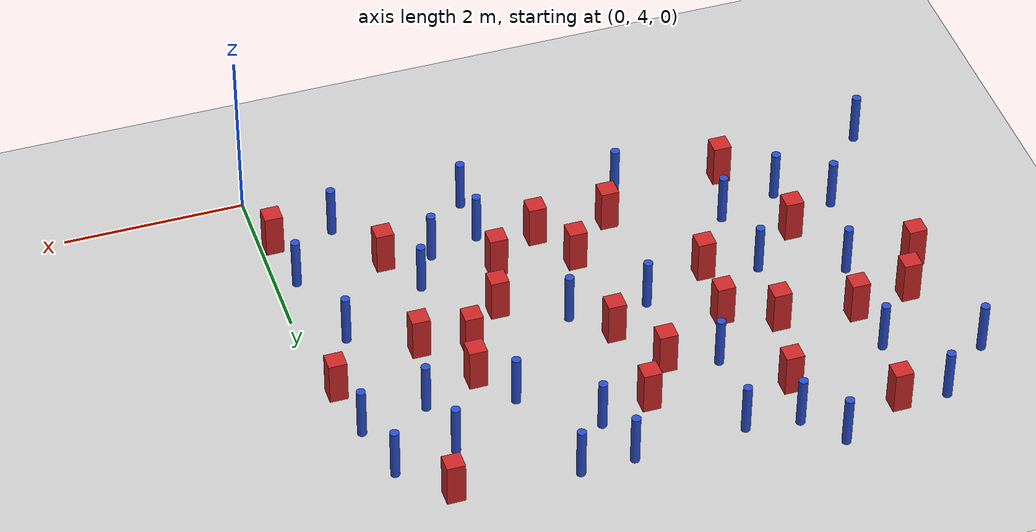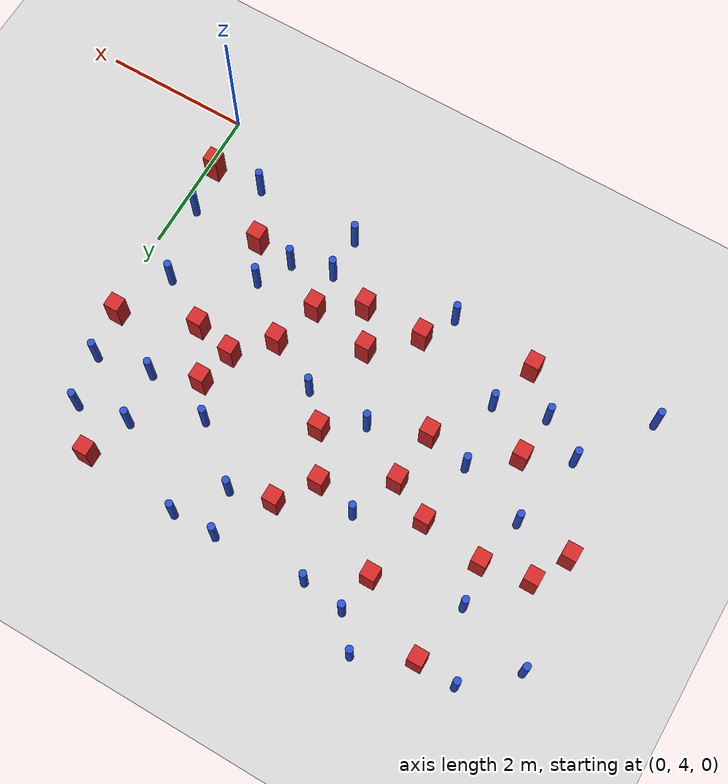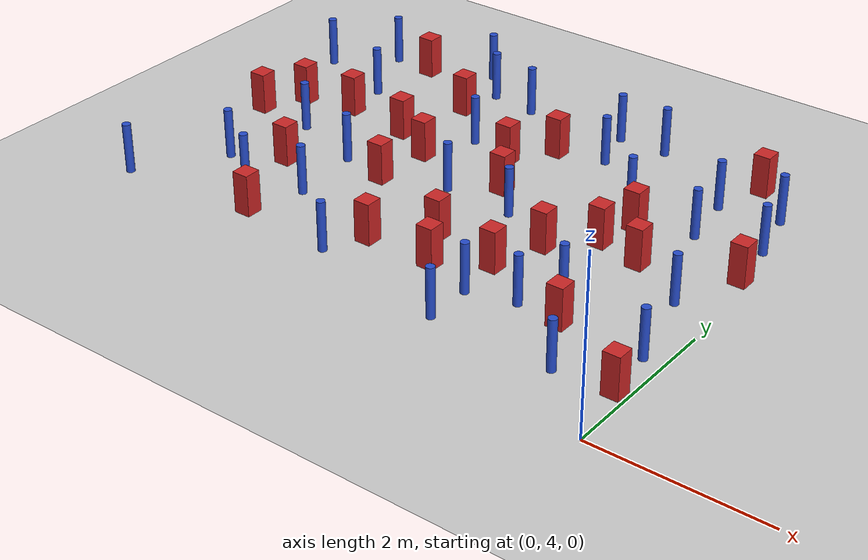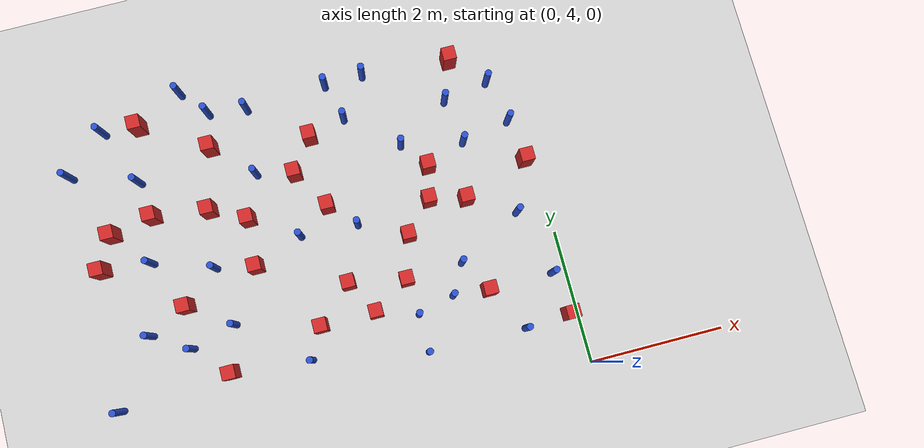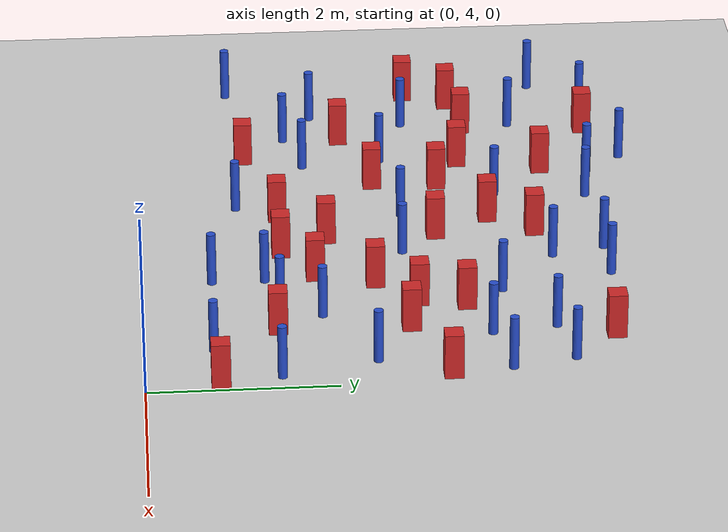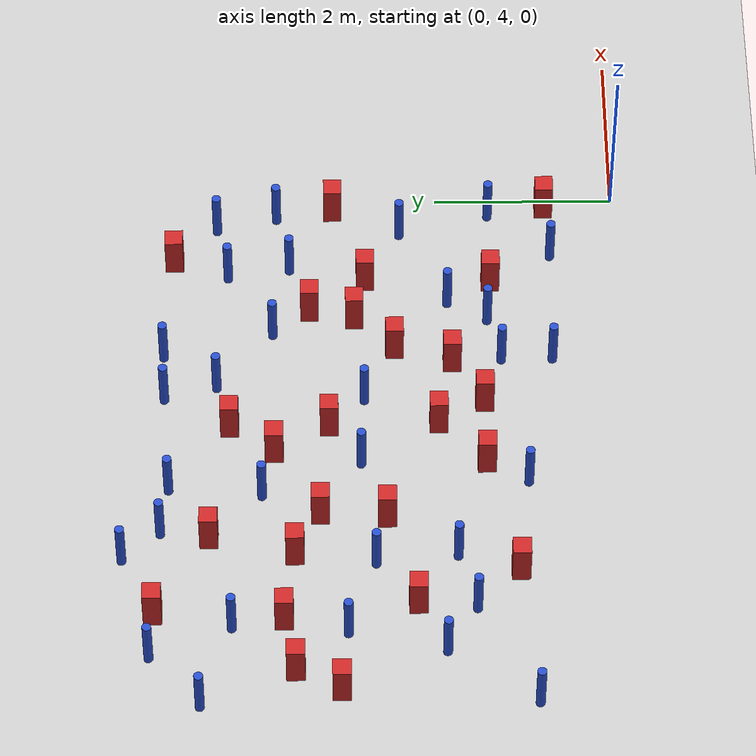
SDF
<sdf version="1.6">
 <world name="default">
  <model name="ground_plane">
   <static>1</static>
   <link name="link">
    <collision name="collision">
     <geometry><plane><normal>0 0 1</normal><size>100 100</size></plane></geometry>
     <surface><friction><ode><mu>100</mu><mu2>50</mu2></ode></friction></surface>
    </collision>
    <visual name="visual">
     <cast_shadows>0</cast_shadows>
     <geometry><plane><normal>0 0 1</normal><size>100 100</size></plane></geometry>
     <material>
      <ambient>1.0 1.0 1.0 1.0</ambient>
      <diffuse>0.8 0.8 0.8 1.0</diffuse>
      <specular>0.01 0.01 0.01 1.000000</specular>
     </material>
    </visual>
   </link>
  </model>
  <model name="square_post_obstacle0">
   <static>true</static>
   <pose>-4.44707930667 6.60124097648 -4.36207812815e-07 3.75137919937e-06 9.77721102514e-07 2.47381364184e-05</pose>
   <link name="link">
    <pose>0 0 0.25 0 -0 0</pose>
    <inertial>
     <mass>100</mass>
     <inertia>
      <ixx>0.166667</ixx>
      <ixy>0</ixy>
      <ixz>0</ixz>
      <iyy>0.166667</iyy>
      <iyz>0</iyz>
      <izz>0.166667</izz>
     </inertia>
    </inertial>
    <collision name="collision"><geometry><box><size>.2 .2 .5</size></box></geometry></collision>
    <visual name="visual">
     <geometry><box><size>.2 .2 .5</size></box></geometry>
     <material>
      <script><name>Gazebo/Red</name><uri>file://media/materials/scripts/gazebo.material</uri></script>
     </material>
    </visual>
   </link>
  </model>
  <model name="pole_obstacle4">
   <static>true</static>
   <pose>-2.6535177861 8.46014323631 -3.09024884848e-07 -7.19054271902e-07 -2.11315075199e-07 -1.93935509286e-07</pose>
   <link name="link">
    <pose>0 0 0.3 0 -0 0</pose>
    <inertial>
     <mass>1</mass>
     <inertia><ixx>0.145833</ixx><ixy>0</ixy><ixz>0</ixz><iyy>0.145833</iyy><iyz>0</iyz><izz>0.125</izz></inertia>
    </inertial>
    <collision name="collision">
     <geometry><cylinder><radius>0.05</radius><length>.6</length></cylinder></geometry>
    </collision>
    <visual name="visual">
     <geometry><cylinder><radius>0.05</radius><length>.6</length></cylinder></geometry>
     <material>
      <script><name>Gazebo/Blue</name><uri>file://media/materials/scripts/gazebo.material</uri></script>
     </material>
    </visual>
   </link>
  </model>
  <model name="pole_obstacle12">
   <static>true</static>
   <pose>-5.93365733735 7.03019296914 -3.09024884793e-07 -7.19054271911e-07 -2.1131507516e-07 -1.93935509277e-07</pose>
   <link name="link">
    <pose>0 0 0.3 0 -0 0</pose>
    <inertial>
     <mass>1</mass>
     <inertia><ixx>0.145833</ixx><ixy>0</ixy><ixz>0</ixz><iyy>0.145833</iyy><iyz>0</iyz><izz>0.125</izz></inertia>
    </inertial>
    <collision name="collision">
     <geometry><cylinder><radius>0.05</radius><length>.6</length></cylinder></geometry>
    </collision>
    <visual name="visual">
     <geometry><cylinder><radius>0.05</radius><length>.6</length></cylinder></geometry>
     <material>
      <script><name>Gazebo/Blue</name><uri>file://media/materials/scripts/gazebo.material</uri></script>
     </material>
    </visual>
   </link>
  </model>
  <model name="square_post_obstacle22">
   <static>true</static>
   <pose>-2.14941318314 6.49315178788 -4.36207812815e-07 3.75137919937e-06 9.77721102514e-07 2.47381364184e-05</pose>
   <link name="link">
    <pose>0 0 0.25 0 -0 0</pose>
    <inertial>
     <mass>100</mass>
     <inertia>
      <ixx>0.166667</ixx>
      <ixy>0</ixy>
      <ixz>0</ixz>
      <iyy>0.166667</iyy>
      <iyz>0</iyz>
      <izz>0.166667</izz>
     </inertia>
    </inertial>
    <collision name="collision"><geometry><box><size>.2 .2 .5</size></box></geometry></collision>
    <visual name="visual">
     <geometry><box><size>.2 .2 .5</size></box></geometry>
     <material>
      <script><name>Gazebo/Red</name><uri>file://media/materials/scripts/gazebo.material</uri></script>
     </material>
    </visual>
   </link>
  </model>
  <model name="pole_obstacle19">
   <static>true</static>
   <pose>-2.80860477781 9.03629585932 -3.09024884848e-07 -7.19054271902e-07 -2.11315075199e-07 -1.93935509286e-07</pose>
   <link name="link">
    <pose>0 0 0.3 0 -0 0</pose>
    <inertial>
     <mass>1</mass>
     <inertia><ixx>0.145833</ixx><ixy>0</ixy><ixz>0</ixz><iyy>0.145833</iyy><iyz>0</iyz><izz>0.125</izz></inertia>
    </inertial>
    <collision name="collision">
     <geometry><cylinder><radius>0.05</radius><length>.6</length></cylinder></geometry>
    </collision>
    <visual name="visual">
     <geometry><cylinder><radius>0.05</radius><length>.6</length></cylinder></geometry>
     <material>
      <script><name>Gazebo/Blue</name><uri>file://media/materials/scripts/gazebo.material</uri></script>
     </material>
    </visual>
   </link>
  </model>
  <model name="square_post_obstacle29">
   <static>true</static>
   <pose>-4.93352778834 7.59655148144 -4.36207812815e-07 3.75137919937e-06 9.77721102514e-07 2.47381364184e-05</pose>
   <link name="link">
    <pose>0 0 0.25 0 -0 0</pose>
    <inertial>
     <mass>100</mass>
     <inertia>
      <ixx>0.166667</ixx>
      <ixy>0</ixy>
      <ixz>0</ixz>
      <iyy>0.166667</iyy>
      <iyz>0</iyz>
      <izz>0.166667</izz>
     </inertia>
    </inertial>
    <collision name="collision"><geometry><box><size>.2 .2 .5</size></box></geometry></collision>
    <visual name="visual">
     <geometry><box><size>.2 .2 .5</size></box></geometry>
     <material>
      <script><name>Gazebo/Red</name><uri>file://media/materials/scripts/gazebo.material</uri></script>
     </material>
    </visual>
   </link>
  </model>
  <model name="pole_obstacle20">
   <static>true</static>
   <pose>-1.10309107053 8.34648023135 -3.09024884793e-07 -7.19054271912e-07 -2.1131507515e-07 -1.93935509273e-07</pose>
   <link name="link">
    <pose>0 0 0.3 0 -0 0</pose>
    <inertial>
     <mass>1</mass>
     <inertia><ixx>0.145833</ixx><ixy>0</ixy><ixz>0</ixz><iyy>0.145833</iyy><iyz>0</iyz><izz>0.125</izz></inertia>
    </inertial>
    <collision name="collision">
     <geometry><cylinder><radius>0.05</radius><length>.6</length></cylinder></geometry>
    </collision>
    <visual name="visual">
     <geometry><cylinder><radius>0.05</radius><length>.6</length></cylinder></geometry>
     <material>
      <script><name>Gazebo/Blue</name><uri>file://media/materials/scripts/gazebo.material</uri></script>
     </material>
    </visual>
   </link>
  </model>
  <model name="pole_obstacle24">
   <static>true</static>
   <pose>-1.73352743419 5.45327862843 -3.09024884793e-07 -7.19054271912e-07 -2.11315075134e-07 -1.93935509265e-07</pose>
   <link name="link">
    <pose>0 0 0.3 0 -0 0</pose>
    <inertial>
     <mass>1</mass>
     <inertia><ixx>0.145833</ixx><ixy>0</ixy><ixz>0</ixz><iyy>0.145833</iyy><iyz>0</iyz><izz>0.125</izz></inertia>
    </inertial>
    <collision name="collision">
     <geometry><cylinder><radius>0.05</radius><length>.6</length></cylinder></geometry>
    </collision>
    <visual name="visual">
     <geometry><cylinder><radius>0.05</radius><length>.6</length></cylinder></geometry>
     <material>
      <script><name>Gazebo/Blue</name><uri>file://media/materials/scripts/gazebo.material</uri></script>
     </material>
    </visual>
   </link>
  </model>
  <model name="pole_obstacle31">
   <static>true</static>
   <pose>-0.994695112782 7.65867741135 -3.09024884793e-07 -7.19054271912e-07 -2.11315075128e-07 -1.93935509261e-07</pose>
   <link name="link">
    <pose>0 0 0.3 0 -0 0</pose>
    <inertial>
     <mass>1</mass>
     <inertia><ixx>0.145833</ixx><ixy>0</ixy><ixz>0</ixz><iyy>0.145833</iyy><iyz>0</iyz><izz>0.125</izz></inertia>
    </inertial>
    <collision name="collision">
     <geometry><cylinder><radius>0.05</radius><length>.6</length></cylinder></geometry>
    </collision>
    <visual name="visual">
     <geometry><cylinder><radius>0.05</radius><length>.6</length></cylinder></geometry>
     <material>
      <script><name>Gazebo/Blue</name><uri>file://media/materials/scripts/gazebo.material</uri></script>
     </material>
    </visual>
   </link>
  </model>
  <model name="square_post_obstacle36">
   <static>true</static>
   <pose>-1.17865415847 6.81177369545 -4.36207812815e-07 3.75137919937e-06 9.77721102514e-07 2.47381364184e-05</pose>
   <link name="link">
    <pose>0 0 0.25 0 -0 0</pose>
    <inertial>
     <mass>100</mass>
     <inertia>
      <ixx>0.166667</ixx>
      <ixy>0</ixy>
      <ixz>0</ixz>
      <iyy>0.166667</iyy>
      <iyz>0</iyz>
      <izz>0.166667</izz>
     </inertia>
    </inertial>
    <collision name="collision"><geometry><box><size>.2 .2 .5</size></box></geometry></collision>
    <visual name="visual">
     <geometry><box><size>.2 .2 .5</size></box></geometry>
     <material>
      <script><name>Gazebo/Red</name><uri>file://media/materials/scripts/gazebo.material</uri></script>
     </material>
    </visual>
   </link>
  </model>
  <model name="pole_obstacle38">
   <static>true</static>
   <pose>-3.97011310584 5.05452933793 -3.09024884793e-07 -7.19054271912e-07 -2.11315075139e-07 -1.93935509268e-07</pose>
   <link name="link">
    <pose>0 0 0.3 0 -0 0</pose>
    <inertial>
     <mass>1</mass>
     <inertia><ixx>0.145833</ixx><ixy>0</ixy><ixz>0</ixz><iyy>0.145833</iyy><iyz>0</iyz><izz>0.125</izz></inertia>
    </inertial>
    <collision name="collision">
     <geometry><cylinder><radius>0.05</radius><length>.6</length></cylinder></geometry>
    </collision>
    <visual name="visual">
     <geometry><cylinder><radius>0.05</radius><length>.6</length></cylinder></geometry>
     <material>
      <script><name>Gazebo/Blue</name><uri>file://media/materials/scripts/gazebo.material</uri></script>
     </material>
    </visual>
   </link>
  </model>
  <model name="pole_obstacle41">
   <static>true</static>
   <pose>-6.22653493084 9.1432001256 -3.09024884793e-07 -7.19054271912e-07 -2.1131507513e-07 -1.93935509261e-07</pose>
   <link name="link">
    <pose>0 0 0.3 0 -0 0</pose>
    <inertial>
     <mass>1</mass>
     <inertia><ixx>0.145833</ixx><ixy>0</ixy><ixz>0</ixz><iyy>0.145833</iyy><iyz>0</iyz><izz>0.125</izz></inertia>
    </inertial>
    <collision name="collision">
     <geometry><cylinder><radius>0.05</radius><length>.6</length></cylinder></geometry>
    </collision>
    <visual name="visual">
     <geometry><cylinder><radius>0.05</radius><length>.6</length></cylinder></geometry>
     <material>
      <script><name>Gazebo/Blue</name><uri>file://media/materials/scripts/gazebo.material</uri></script>
     </material>
    </visual>
   </link>
  </model>
  <model name="pole_obstacle42">
   <static>true</static>
   <pose>-1.91700134194 7.84439493254 -3.09024884793e-07 -7.19054271912e-07 -2.11315075134e-07 -1.93935509265e-07</pose>
   <link name="link">
    <pose>0 0 0.3 0 -0 0</pose>
    <inertial>
     <mass>1</mass>
     <inertia><ixx>0.145833</ixx><ixy>0</ixy><ixz>0</ixz><iyy>0.145833</iyy><iyz>0</iyz><izz>0.125</izz></inertia>
    </inertial>
    <collision name="collision">
     <geometry><cylinder><radius>0.05</radius><length>.6</length></cylinder></geometry>
    </collision>
    <visual name="visual">
     <geometry><cylinder><radius>0.05</radius><length>.6</length></cylinder></geometry>
     <material>
      <script><name>Gazebo/Blue</name><uri>file://media/materials/scripts/gazebo.material</uri></script>
     </material>
    </visual>
   </link>
  </model>
  <model name="pole_obstacle47">
   <static>true</static>
   <pose>-2.28388893971 4.74195943339 -3.09024884793e-07 -7.19054271912e-07 -2.11315075134e-07 -1.93935509266e-07</pose>
   <link name="link">
    <pose>0 0 0.3 0 -0 0</pose>
    <inertial>
     <mass>1</mass>
     <inertia><ixx>0.145833</ixx><ixy>0</ixy><ixz>0</ixz><iyy>0.145833</iyy><iyz>0</iyz><izz>0.125</izz></inertia>
    </inertial>
    <collision name="collision">
     <geometry><cylinder><radius>0.05</radius><length>.6</length></cylinder></geometry>
    </collision>
    <visual name="visual">
     <geometry><cylinder><radius>0.05</radius><length>.6</length></cylinder></geometry>
     <material>
      <script><name>Gazebo/Blue</name><uri>file://media/materials/scripts/gazebo.material</uri></script>
     </material>
    </visual>
   </link>
  </model>
  <model name="pole_obstacle51">
   <static>true</static>
   <pose>-4.94535502429 5.84343271887 -3.09024884793e-07 -7.19054271911e-07 -2.1131507516e-07 -1.93935509277e-07</pose>
   <link name="link">
    <pose>0 0 0.3 0 -0 0</pose>
    <inertial>
     <mass>1</mass>
     <inertia><ixx>0.145833</ixx><ixy>0</ixy><ixz>0</ixz><iyy>0.145833</iyy><iyz>0</iyz><izz>0.125</izz></inertia>
    </inertial>
    <collision name="collision">
     <geometry><cylinder><radius>0.05</radius><length>.6</length></cylinder></geometry>
    </collision>
    <visual name="visual">
     <geometry><cylinder><radius>0.05</radius><length>.6</length></cylinder></geometry>
     <material>
      <script><name>Gazebo/Blue</name><uri>file://media/materials/scripts/gazebo.material</uri></script>
     </material>
    </visual>
   </link>
  </model>
  <model name="pole_obstacle73">
   <static>true</static>
   <pose>-0.493579842853 6.41950376337 -3.09024884793e-07 -7.19054271912e-07 -2.11315075131e-07 -1.93935509262e-07</pose>
   <link name="link">
    <pose>0 0 0.3 0 -0 0</pose>
    <inertial>
     <mass>1</mass>
     <inertia><ixx>0.145833</ixx><ixy>0</ixy><ixz>0</ixz><iyy>0.145833</iyy><iyz>0</iyz><izz>0.125</izz></inertia>
    </inertial>
    <collision name="collision">
     <geometry><cylinder><radius>0.05</radius><length>.6</length></cylinder></geometry>
    </collision>
    <visual name="visual">
     <geometry><cylinder><radius>0.05</radius><length>.6</length></cylinder></geometry>
     <material>
      <script><name>Gazebo/Blue</name><uri>file://media/materials/scripts/gazebo.material</uri></script>
     </material>
    </visual>
   </link>
  </model>
  <model name="pole_obstacle76">
   <static>true</static>
   <pose>-5.85650217175 8.26815401584 -3.09024884793e-07 -7.19054271912e-07 -2.1131507513e-07 -1.93935509261e-07</pose>
   <link name="link">
    <pose>0 0 0.3 0 -0 0</pose>
    <inertial>
     <mass>1</mass>
     <inertia><ixx>0.145833</ixx><ixy>0</ixy><ixz>0</ixz><iyy>0.145833</iyy><iyz>0</iyz><izz>0.125</izz></inertia>
    </inertial>
    <collision name="collision">
     <geometry><cylinder><radius>0.05</radius><length>.6</length></cylinder></geometry>
    </collision>
    <visual name="visual">
     <geometry><cylinder><radius>0.05</radius><length>.6</length></cylinder></geometry>
     <material>
      <script><name>Gazebo/Blue</name><uri>file://media/materials/scripts/gazebo.material</uri></script>
     </material>
    </visual>
   </link>
  </model>
  <model name="pole_obstacle79">
   <static>true</static>
   <pose>-2.21996680137 9.05166987795 -3.09024884848e-07 -7.19054271902e-07 -2.11315075199e-07 -1.93935509286e-07</pose>
   <link name="link">
    <pose>0 0 0.3 0 -0 0</pose>
    <inertial>
     <mass>1</mass>
     <inertia><ixx>0.145833</ixx><ixy>0</ixy><ixz>0</ixz><iyy>0.145833</iyy><iyz>0</iyz><izz>0.125</izz></inertia>
    </inertial>
    <collision name="collision">
     <geometry><cylinder><radius>0.05</radius><length>.6</length></cylinder></geometry>
    </collision>
    <visual name="visual">
     <geometry><cylinder><radius>0.05</radius><length>.6</length></cylinder></geometry>
     <material>
      <script><name>Gazebo/Blue</name><uri>file://media/materials/scripts/gazebo.material</uri></script>
     </material>
    </visual>
   </link>
  </model>
  <model name="pole_obstacle80">
   <static>true</static>
   <pose>-4.13081466835 7.95430052767 -3.09024884793e-07 -7.19054271912e-07 -2.11315075134e-07 -1.93935509264e-07</pose>
   <link name="link">
    <pose>0 0 0.3 0 -0 0</pose>
    <inertial>
     <mass>1</mass>
     <inertia><ixx>0.145833</ixx><ixy>0</ixy><ixz>0</ixz><iyy>0.145833</iyy><iyz>0</iyz><izz>0.125</izz></inertia>
    </inertial>
    <collision name="collision">
     <geometry><cylinder><radius>0.05</radius><length>.6</length></cylinder></geometry>
    </collision>
    <visual name="visual">
     <geometry><cylinder><radius>0.05</radius><length>.6</length></cylinder></geometry>
     <material>
      <script><name>Gazebo/Blue</name><uri>file://media/materials/scripts/gazebo.material</uri></script>
     </material>
    </visual>
   </link>
  </model>
  <model name="pole_obstacle86">
   <static>true</static>
   <pose>-6.17208223775 5.98402487464 -3.09024884793e-07 -7.19054271911e-07 -2.1131507516e-07 -1.93935509277e-07</pose>
   <link name="link">
    <pose>0 0 0.3 0 -0 0</pose>
    <inertial>
     <mass>1</mass>
     <inertia><ixx>0.145833</ixx><ixy>0</ixy><ixz>0</ixz><iyy>0.145833</iyy><iyz>0</iyz><izz>0.125</izz></inertia>
    </inertial>
    <collision name="collision">
     <geometry><cylinder><radius>0.05</radius><length>.6</length></cylinder></geometry>
    </collision>
    <visual name="visual">
     <geometry><cylinder><radius>0.05</radius><length>.6</length></cylinder></geometry>
     <material>
      <script><name>Gazebo/Blue</name><uri>file://media/materials/scripts/gazebo.material</uri></script>
     </material>
    </visual>
   </link>
  </model>
  <model name="pole_obstacle87">
   <static>true</static>
   <pose>-0.819514762341 4.721761783 -3.09024884793e-07 -7.19054271912e-07 -2.11315075129e-07 -1.93935509261e-07</pose>
   <link name="link">
    <pose>0 0 0.3 0 -0 0</pose>
    <inertial>
     <mass>1</mass>
     <inertia><ixx>0.145833</ixx><ixy>0</ixy><ixz>0</ixz><iyy>0.145833</iyy><iyz>0</iyz><izz>0.125</izz></inertia>
    </inertial>
    <collision name="collision">
     <geometry><cylinder><radius>0.05</radius><length>.6</length></cylinder></geometry>
    </collision>
    <visual name="visual">
     <geometry><cylinder><radius>0.05</radius><length>.6</length></cylinder></geometry>
     <material>
      <script><name>Gazebo/Blue</name><uri>file://media/materials/scripts/gazebo.material</uri></script>
     </material>
    </visual>
   </link>
  </model>
  <model name="square_post_obstacle81">
   <static>true</static>
   <pose>-5.57718917211 6.282874196 -4.36207812815e-07 3.75137919937e-06 9.77721102514e-07 2.47381364184e-05</pose>
   <link name="link">
    <pose>0 0 0.25 0 -0 0</pose>
    <inertial>
     <mass>100</mass>
     <inertia>
      <ixx>0.166667</ixx>
      <ixy>0</ixy>
      <ixz>0</ixz>
      <iyy>0.166667</iyy>
      <iyz>0</iyz>
      <izz>0.166667</izz>
     </inertia>
    </inertial>
    <collision name="collision"><geometry><box><size>.2 .2 .5</size></box></geometry></collision>
    <visual name="visual">
     <geometry><box><size>.2 .2 .5</size></box></geometry>
     <material>
      <script><name>Gazebo/Red</name><uri>file://media/materials/scripts/gazebo.material</uri></script>
     </material>
    </visual>
   </link>
  </model>
  <model name="square_post_obstacle82">
   <static>true</static>
   <pose>-3.72510347815 5.50558484742 -4.36207812815e-07 3.75137919937e-06 9.77721102514e-07 2.47381364184e-05</pose>
   <link name="link">
    <pose>0 0 0.25 0 -0 0</pose>
    <inertial>
     <mass>100</mass>
     <inertia>
      <ixx>0.166667</ixx>
      <ixy>0</ixy>
      <ixz>0</ixz>
      <iyy>0.166667</iyy>
      <iyz>0</iyz>
      <izz>0.166667</izz>
     </inertia>
    </inertial>
    <collision name="collision"><geometry><box><size>.2 .2 .5</size></box></geometry></collision>
    <visual name="visual">
     <geometry><box><size>.2 .2 .5</size></box></geometry>
     <material>
      <script><name>Gazebo/Red</name><uri>file://media/materials/scripts/gazebo.material</uri></script>
     </material>
    </visual>
   </link>
  </model>
  <model name="pole_obstacle93">
   <static>true</static>
   <pose>-3.70602208355 6.87484730034 -3.09024884793e-07 -7.19054271912e-07 -2.11315075134e-07 -1.93935509266e-07</pose>
   <link name="link">
    <pose>0 0 0.3 0 -0 0</pose>
    <inertial>
     <mass>1</mass>
     <inertia><ixx>0.145833</ixx><ixy>0</ixy><ixz>0</ixz><iyy>0.145833</iyy><iyz>0</iyz><izz>0.125</izz></inertia>
    </inertial>
    <collision name="collision">
     <geometry><cylinder><radius>0.05</radius><length>.6</length></cylinder></geometry>
    </collision>
    <visual name="visual">
     <geometry><cylinder><radius>0.05</radius><length>.6</length></cylinder></geometry>
     <material>
      <script><name>Gazebo/Blue</name><uri>file://media/materials/scripts/gazebo.material</uri></script>
     </material>
    </visual>
   </link>
  </model>
  <model name="square_post_obstacle84">
   <static>true</static>
   <pose>-6.41984492099 7.58847289608 -4.36207812815e-07 3.75137919937e-06 9.77721102514e-07 2.47381364184e-05</pose>
   <link name="link">
    <pose>0 0 0.25 0 -0 0</pose>
    <inertial>
     <mass>100</mass>
     <inertia>
      <ixx>0.166667</ixx>
      <ixy>0</ixy>
      <ixz>0</ixz>
      <iyy>0.166667</iyy>
      <iyz>0</iyz>
      <izz>0.166667</izz>
     </inertia>
    </inertial>
    <collision name="collision"><geometry><box><size>.2 .2 .5</size></box></geometry></collision>
    <visual name="visual">
     <geometry><box><size>.2 .2 .5</size></box></geometry>
     <material>
      <script><name>Gazebo/Red</name><uri>file://media/materials/scripts/gazebo.material</uri></script>
     </material>
    </visual>
   </link>
  </model>
  <model name="square_post_obstacle87">
   <static>true</static>
   <pose>-0.139294346468 4.77614989292 -4.36207812815e-07 3.75137919937e-06 9.77721102514e-07 2.47381364184e-05</pose>
   <link name="link">
    <pose>0 0 0.25 0 -0 0</pose>
    <inertial>
     <mass>100</mass>
     <inertia>
      <ixx>0.166667</ixx>
      <ixy>0</ixy>
      <ixz>0</ixz>
      <iyy>0.166667</iyy>
      <iyz>0</iyz>
      <izz>0.166667</izz>
     </inertia>
    </inertial>
    <collision name="collision"><geometry><box><size>.2 .2 .5</size></box></geometry></collision>
    <visual name="visual">
     <geometry><box><size>.2 .2 .5</size></box></geometry>
     <material>
      <script><name>Gazebo/Red</name><uri>file://media/materials/scripts/gazebo.material</uri></script>
     </material>
    </visual>
   </link>
  </model>
  <model name="pole_obstacle103">
   <static>true</static>
   <pose>-0.412651753398 8.47600253798 -3.09024884793e-07 -7.19054271911e-07 -2.11315075166e-07 -1.93935509282e-07</pose>
   <link name="link">
    <pose>0 0 0.3 0 -0 0</pose>
    <inertial>
     <mass>1</mass>
     <inertia><ixx>0.145833</ixx><ixy>0</ixy><ixz>0</ixz><iyy>0.145833</iyy><iyz>0</iyz><izz>0.125</izz></inertia>
    </inertial>
    <collision name="collision">
     <geometry><cylinder><radius>0.05</radius><length>.6</length></cylinder></geometry>
    </collision>
    <visual name="visual">
     <geometry><cylinder><radius>0.05</radius><length>.6</length></cylinder></geometry>
     <material>
      <script><name>Gazebo/Blue</name><uri>file://media/materials/scripts/gazebo.material</uri></script>
     </material>
    </visual>
   </link>
  </model>
  <model name="square_post_obstacle99">
   <static>true</static>
   <pose>-3.21200147324 7.22199936802 -4.36207812815e-07 3.75137919937e-06 9.77721102514e-07 2.47381364184e-05</pose>
   <link name="link">
    <pose>0 0 0.25 0 -0 0</pose>
    <inertial>
     <mass>100</mass>
     <inertia>
      <ixx>0.166667</ixx>
      <ixy>0</ixy>
      <ixz>0</ixz>
      <iyy>0.166667</iyy>
      <iyz>0</iyz>
      <izz>0.166667</izz>
     </inertia>
    </inertial>
    <collision name="collision"><geometry><box><size>.2 .2 .5</size></box></geometry></collision>
    <visual name="visual">
     <geometry><box><size>.2 .2 .5</size></box></geometry>
     <material>
      <script><name>Gazebo/Red</name><uri>file://media/materials/scripts/gazebo.material</uri></script>
     </material>
    </visual>
   </link>
  </model>
  <model name="square_post_obstacle106">
   <static>true</static>
   <pose>-5.69192329054 9.10882002796 -4.36207812815e-07 3.75137919937e-06 9.77721102514e-07 2.47381364184e-05</pose>
   <link name="link">
    <pose>0 0 0.25 0 -0 0</pose>
    <inertial>
     <mass>100</mass>
     <inertia>
      <ixx>0.166667</ixx>
      <ixy>0</ixy>
      <ixz>0</ixz>
      <iyy>0.166667</iyy>
      <iyz>0</iyz>
      <izz>0.166667</izz>
     </inertia>
    </inertial>
    <collision name="collision"><geometry><box><size>.2 .2 .5</size></box></geometry></collision>
    <visual name="visual">
     <geometry><box><size>.2 .2 .5</size></box></geometry>
     <material>
      <script><name>Gazebo/Red</name><uri>file://media/materials/scripts/gazebo.material</uri></script>
     </material>
    </visual>
   </link>
  </model>
  <model name="square_post_obstacle111">
   <static>true</static>
   <pose>-1.60870423476 7.4343483702 -4.36207812815e-07 3.75137919937e-06 9.77721102514e-07 2.47381364184e-05</pose>
   <link name="link">
    <pose>0 0 0.25 0 -0 0</pose>
    <inertial>
     <mass>100</mass>
     <inertia>
      <ixx>0.166667</ixx>
      <ixy>0</ixy>
      <ixz>0</ixz>
      <iyy>0.166667</iyy>
      <iyz>0</iyz>
      <izz>0.166667</izz>
     </inertia>
    </inertial>
    <collision name="collision"><geometry><box><size>.2 .2 .5</size></box></geometry></collision>
    <visual name="visual">
     <geometry><box><size>.2 .2 .5</size></box></geometry>
     <material>
      <script><name>Gazebo/Red</name><uri>file://media/materials/scripts/gazebo.material</uri></script>
     </material>
    </visual>
   </link>
  </model>
  <model name="pole_obstacle125">
   <static>true</static>
   <pose>-6.84448860945 8.59436955283 -3.09024884793e-07 -7.19054271912e-07 -2.1131507513e-07 -1.93935509261e-07</pose>
   <link name="link">
    <pose>0 0 0.3 0 -0 0</pose>
    <inertial>
     <mass>1</mass>
     <inertia><ixx>0.145833</ixx><ixy>0</ixy><ixz>0</ixz><iyy>0.145833</iyy><iyz>0</iyz><izz>0.125</izz></inertia>
    </inertial>
    <collision name="collision">
     <geometry><cylinder><radius>0.05</radius><length>.6</length></cylinder></geometry>
    </collision>
    <visual name="visual">
     <geometry><cylinder><radius>0.05</radius><length>.6</length></cylinder></geometry>
     <material>
      <script><name>Gazebo/Blue</name><uri>file://media/materials/scripts/gazebo.material</uri></script>
     </material>
    </visual>
   </link>
  </model>
  <model name="pole_obstacle132">
   <static>true</static>
   <pose>-4.04529069929 8.9699051362 -3.09024884793e-07 -7.19054271912e-07 -2.1131507513e-07 -1.93935509262e-07</pose>
   <link name="link">
    <pose>0 0 0.3 0 -0 0</pose>
    <inertial>
     <mass>1</mass>
     <inertia><ixx>0.145833</ixx><ixy>0</ixy><ixz>0</ixz><iyy>0.145833</iyy><iyz>0</iyz><izz>0.125</izz></inertia>
    </inertial>
    <collision name="collision">
     <geometry><cylinder><radius>0.05</radius><length>.6</length></cylinder></geometry>
    </collision>
    <visual name="visual">
     <geometry><cylinder><radius>0.05</radius><length>.6</length></cylinder></geometry>
     <material>
      <script><name>Gazebo/Blue</name><uri>file://media/materials/scripts/gazebo.material</uri></script>
     </material>
    </visual>
   </link>
  </model>
  <model name="pole_obstacle137">
   <static>true</static>
   <pose>-2.28960163239 5.31006337422 -3.09024884793e-07 -7.19054271912e-07 -2.11315075134e-07 -1.93935509266e-07</pose>
   <link name="link">
    <pose>0 0 0.3 0 -0 0</pose>
    <inertial>
     <mass>1</mass>
     <inertia><ixx>0.145833</ixx><ixy>0</ixy><ixz>0</ixz><iyy>0.145833</iyy><iyz>0</iyz><izz>0.125</izz></inertia>
    </inertial>
    <collision name="collision">
     <geometry><cylinder><radius>0.05</radius><length>.6</length></cylinder></geometry>
    </collision>
    <visual name="visual">
     <geometry><cylinder><radius>0.05</radius><length>.6</length></cylinder></geometry>
     <material>
      <script><name>Gazebo/Blue</name><uri>file://media/materials/scripts/gazebo.material</uri></script>
     </material>
    </visual>
   </link>
  </model>
  <model name="pole_obstacle142">
   <static>true</static>
   <pose>-1.48437992096 5.89385613508 -3.09024884793e-07 -7.19054271912e-07 -2.11315075134e-07 -1.93935509265e-07</pose>
   <link name="link">
    <pose>0 0 0.3 0 -0 0</pose>
    <inertial>
     <mass>1</mass>
     <inertia><ixx>0.145833</ixx><ixy>0</ixy><ixz>0</ixz><iyy>0.145833</iyy><iyz>0</iyz><izz>0.125</izz></inertia>
    </inertial>
    <collision name="collision">
     <geometry><cylinder><radius>0.05</radius><length>.6</length></cylinder></geometry>
    </collision>
    <visual name="visual">
     <geometry><cylinder><radius>0.05</radius><length>.6</length></cylinder></geometry>
     <material>
      <script><name>Gazebo/Blue</name><uri>file://media/materials/scripts/gazebo.material</uri></script>
     </material>
    </visual>
   </link>
  </model>
  <model name="square_post_obstacle130">
   <static>true</static>
   <pose>-2.34170460678 5.85743512522 -4.36207812815e-07 3.75137919937e-06 9.77721102514e-07 2.47381364184e-05</pose>
   <link name="link">
    <pose>0 0 0.25 0 -0 0</pose>
    <inertial>
     <mass>100</mass>
     <inertia>
      <ixx>0.166667</ixx>
      <ixy>0</ixy>
      <ixz>0</ixz>
      <iyy>0.166667</iyy>
      <iyz>0</iyz>
      <izz>0.166667</izz>
     </inertia>
    </inertial>
    <collision name="collision"><geometry><box><size>.2 .2 .5</size></box></geometry></collision>
    <visual name="visual">
     <geometry><box><size>.2 .2 .5</size></box></geometry>
     <material>
      <script><name>Gazebo/Red</name><uri>file://media/materials/scripts/gazebo.material</uri></script>
     </material>
    </visual>
   </link>
  </model>
  <model name="pole_obstacle143">
   <static>true</static>
   <pose>-5.03745219523 6.72575550571 -3.09024884793e-07 -7.19054271911e-07 -2.1131507516e-07 -1.93935509277e-07</pose>
   <link name="link">
    <pose>0 0 0.3 0 -0 0</pose>
    <inertial>
     <mass>1</mass>
     <inertia><ixx>0.145833</ixx><ixy>0</ixy><ixz>0</ixz><iyy>0.145833</iyy><iyz>0</iyz><izz>0.125</izz></inertia>
    </inertial>
    <collision name="collision">
     <geometry><cylinder><radius>0.05</radius><length>.6</length></cylinder></geometry>
    </collision>
    <visual name="visual">
     <geometry><cylinder><radius>0.05</radius><length>.6</length></cylinder></geometry>
     <material>
      <script><name>Gazebo/Blue</name><uri>file://media/materials/scripts/gazebo.material</uri></script>
     </material>
    </visual>
   </link>
  </model>
  <model name="square_post_obstacle136">
   <static>true</static>
   <pose>-3.18633096799 6.02145476558 -4.36207812815e-07 3.75137919937e-06 9.77721102514e-07 2.47381364184e-05</pose>
   <link name="link">
    <pose>0 0 0.25 0 -0 0</pose>
    <inertial>
     <mass>100</mass>
     <inertia>
      <ixx>0.166667</ixx>
      <ixy>0</ixy>
      <ixz>0</ixz>
      <iyy>0.166667</iyy>
      <iyz>0</iyz>
      <izz>0.166667</izz>
     </inertia>
    </inertial>
    <collision name="collision"><geometry><box><size>.2 .2 .5</size></box></geometry></collision>
    <visual name="visual">
     <geometry><box><size>.2 .2 .5</size></box></geometry>
     <material>
      <script><name>Gazebo/Red</name><uri>file://media/materials/scripts/gazebo.material</uri></script>
     </material>
    </visual>
   </link>
  </model>
  <model name="square_post_obstacle140">
   <static>true</static>
   <pose>-0.16510427056 7.17239808839 -4.36207812815e-07 3.75137919937e-06 9.77721102514e-07 2.47381364184e-05</pose>
   <link name="link">
    <pose>0 0 0.25 0 -0 0</pose>
    <inertial>
     <mass>100</mass>
     <inertia>
      <ixx>0.166667</ixx>
      <ixy>0</ixy>
      <ixz>0</ixz>
      <iyy>0.166667</iyy>
      <iyz>0</iyz>
      <izz>0.166667</izz>
     </inertia>
    </inertial>
    <collision name="collision"><geometry><box><size>.2 .2 .5</size></box></geometry></collision>
    <visual name="visual">
     <geometry><box><size>.2 .2 .5</size></box></geometry>
     <material>
      <script><name>Gazebo/Red</name><uri>file://media/materials/scripts/gazebo.material</uri></script>
     </material>
    </visual>
   </link>
  </model>
  <model name="square_post_obstacle141">
   <static>true</static>
   <pose>-5.77447136575 7.71165678341 -4.36207812815e-07 3.75137919937e-06 9.77721102514e-07 2.47381364184e-05</pose>
   <link name="link">
    <pose>0 0 0.25 0 -0 0</pose>
    <inertial>
     <mass>100</mass>
     <inertia>
      <ixx>0.166667</ixx>
      <ixy>0</ixy>
      <ixz>0</ixz>
      <iyy>0.166667</iyy>
      <iyz>0</iyz>
      <izz>0.166667</izz>
     </inertia>
    </inertial>
    <collision name="collision"><geometry><box><size>.2 .2 .5</size></box></geometry></collision>
    <visual name="visual">
     <geometry><box><size>.2 .2 .5</size></box></geometry>
     <material>
      <script><name>Gazebo/Red</name><uri>file://media/materials/scripts/gazebo.material</uri></script>
     </material>
    </visual>
   </link>
  </model>
  <model name="square_post_obstacle143">
   <static>true</static>
   <pose>-1.72225120917 6.9354068051 -4.36207812815e-07 3.75137919937e-06 9.77721102514e-07 2.47381364184e-05</pose>
   <link name="link">
    <pose>0 0 0.25 0 -0 0</pose>
    <inertial>
     <mass>100</mass>
     <inertia>
      <ixx>0.166667</ixx>
      <ixy>0</ixy>
      <ixz>0</ixz>
      <iyy>0.166667</iyy>
      <iyz>0</iyz>
      <izz>0.166667</izz>
     </inertia>
    </inertial>
    <collision name="collision"><geometry><box><size>.2 .2 .5</size></box></geometry></collision>
    <visual name="visual">
     <geometry><box><size>.2 .2 .5</size></box></geometry>
     <material>
      <script><name>Gazebo/Red</name><uri>file://media/materials/scripts/gazebo.material</uri></script>
     </material>
    </visual>
   </link>
  </model>
  <model name="pole_obstacle154">
   <static>true</static>
   <pose>-6.82562253116 5.02952457703 -3.09024884793e-07 -7.19054271911e-07 -2.1131507516e-07 -1.93935509277e-07</pose>
   <link name="link">
    <pose>0 0 0.3 0 -0 0</pose>
    <inertial>
     <mass>1</mass>
     <inertia><ixx>0.145833</ixx><ixy>0</ixy><ixz>0</ixz><iyy>0.145833</iyy><iyz>0</iyz><izz>0.125</izz></inertia>
    </inertial>
    <collision name="collision">
     <geometry><cylinder><radius>0.05</radius><length>.6</length></cylinder></geometry>
    </collision>
    <visual name="visual">
     <geometry><cylinder><radius>0.05</radius><length>.6</length></cylinder></geometry>
     <material>
      <script><name>Gazebo/Blue</name><uri>file://media/materials/scripts/gazebo.material</uri></script>
     </material>
    </visual>
   </link>
  </model>
  <model name="square_post_obstacle149">
   <static>true</static>
   <pose>-3.21920300905 8.31259924174 -4.36207812815e-07 3.75137919937e-06 9.77721102514e-07 2.47381364184e-05</pose>
   <link name="link">
    <pose>0 0 0.25 0 -0 0</pose>
    <inertial>
     <mass>100</mass>
     <inertia>
      <ixx>0.166667</ixx>
      <ixy>0</ixy>
      <ixz>0</ixz>
      <iyy>0.166667</iyy>
      <iyz>0</iyz>
      <izz>0.166667</izz>
     </inertia>
    </inertial>
    <collision name="collision"><geometry><box><size>.2 .2 .5</size></box></geometry></collision>
    <visual name="visual">
     <geometry><box><size>.2 .2 .5</size></box></geometry>
     <material>
      <script><name>Gazebo/Red</name><uri>file://media/materials/scripts/gazebo.material</uri></script>
     </material>
    </visual>
   </link>
  </model>
  <model name="pole_obstacle159">
   <static>true</static>
   <pose>-0.229922109327 5.41255447406 -3.09024884793e-07 -7.19054271912e-07 -2.11315075131e-07 -1.93935509264e-07</pose>
   <link name="link">
    <pose>0 0 0.3 0 -0 0</pose>
    <inertial>
     <mass>1</mass>
     <inertia><ixx>0.145833</ixx><ixy>0</ixy><ixz>0</ixz><iyy>0.145833</iyy><iyz>0</iyz><izz>0.125</izz></inertia>
    </inertial>
    <collision name="collision">
     <geometry><cylinder><radius>0.05</radius><length>.6</length></cylinder></geometry>
    </collision>
    <visual name="visual">
     <geometry><cylinder><radius>0.05</radius><length>.6</length></cylinder></geometry>
     <material>
      <script><name>Gazebo/Blue</name><uri>file://media/materials/scripts/gazebo.material</uri></script>
     </material>
    </visual>
   </link>
  </model>
  <model name="pole_obstacle166">
   <static>true</static>
   <pose>-5.62689524892 5.6531556404 -3.09024884793e-07 -7.19054271911e-07 -2.1131507516e-07 -1.93935509277e-07</pose>
   <link name="link">
    <pose>0 0 0.3 0 -0 0</pose>
    <inertial>
     <mass>1</mass>
     <inertia><ixx>0.145833</ixx><ixy>0</ixy><ixz>0</ixz><iyy>0.145833</iyy><iyz>0</iyz><izz>0.125</izz></inertia>
    </inertial>
    <collision name="collision">
     <geometry><cylinder><radius>0.05</radius><length>.6</length></cylinder></geometry>
    </collision>
    <visual name="visual">
     <geometry><cylinder><radius>0.05</radius><length>.6</length></cylinder></geometry>
     <material>
      <script><name>Gazebo/Blue</name><uri>file://media/materials/scripts/gazebo.material</uri></script>
     </material>
    </visual>
   </link>
  </model>
  <model name="square_post_obstacle158">
   <static>true</static>
   <pose>-4.71211148116 8.52265558939 -4.36207812815e-07 3.75137919937e-06 9.77721102514e-07 2.47381364184e-05</pose>
   <link name="link">
    <pose>0 0 0.25 0 -0 0</pose>
    <inertial>
     <mass>100</mass>
     <inertia>
      <ixx>0.166667</ixx>
      <ixy>0</ixy>
      <ixz>0</ixz>
      <iyy>0.166667</iyy>
      <iyz>0</iyz>
      <izz>0.166667</izz>
     </inertia>
    </inertial>
    <collision name="collision"><geometry><box><size>.2 .2 .5</size></box></geometry></collision>
    <visual name="visual">
     <geometry><box><size>.2 .2 .5</size></box></geometry>
     <material>
      <script><name>Gazebo/Red</name><uri>file://media/materials/scripts/gazebo.material</uri></script>
     </material>
    </visual>
   </link>
  </model>
  <model name="square_post_obstacle164">
   <static>true</static>
   <pose>-3.57090652204 7.82368219413 -4.36207812815e-07 3.75137919937e-06 9.77721102514e-07 2.47381364184e-05</pose>
   <link name="link">
    <pose>0 0 0.25 0 -0 0</pose>
    <inertial>
     <mass>100</mass>
     <inertia>
      <ixx>0.166667</ixx>
      <ixy>0</ixy>
      <ixz>0</ixz>
      <iyy>0.166667</iyy>
      <iyz>0</iyz>
      <izz>0.166667</izz>
     </inertia>
    </inertial>
    <collision name="collision"><geometry><box><size>.2 .2 .5</size></box></geometry></collision>
    <visual name="visual">
     <geometry><box><size>.2 .2 .5</size></box></geometry>
     <material>
      <script><name>Gazebo/Red</name><uri>file://media/materials/scripts/gazebo.material</uri></script>
     </material>
    </visual>
   </link>
  </model>
  <model name="square_post_obstacle173">
   <static>true</static>
   <pose>-0.888888395401 8.94990838047 -4.36207812815e-07 3.75137919937e-06 9.77721102514e-07 2.47381364184e-05</pose>
   <link name="link">
    <pose>0 0 0.25 0 -0 0</pose>
    <inertial>
     <mass>100</mass>
     <inertia>
      <ixx>0.166667</ixx>
      <ixy>0</ixy>
      <ixz>0</ixz>
      <iyy>0.166667</iyy>
      <iyz>0</iyz>
      <izz>0.166667</izz>
     </inertia>
    </inertial>
    <collision name="collision"><geometry><box><size>.2 .2 .5</size></box></geometry></collision>
    <visual name="visual">
     <geometry><box><size>.2 .2 .5</size></box></geometry>
     <material>
      <script><name>Gazebo/Red</name><uri>file://media/materials/scripts/gazebo.material</uri></script>
     </material>
    </visual>
   </link>
  </model>
  <model name="square_post_obstacle175">
   <static>true</static>
   <pose>-1.20292937223 5.40828696944 -4.36207812815e-07 3.75137919937e-06 9.77721102514e-07 2.47381364184e-05</pose>
   <link name="link">
    <pose>0 0 0.25 0 -0 0</pose>
    <inertial>
     <mass>100</mass>
     <inertia>
      <ixx>0.166667</ixx>
      <ixy>0</ixy>
      <ixz>0</ixz>
      <iyy>0.166667</iyy>
      <iyz>0</iyz>
      <izz>0.166667</izz>
     </inertia>
    </inertial>
    <collision name="collision"><geometry><box><size>.2 .2 .5</size></box></geometry></collision>
    <visual name="visual">
     <geometry><box><size>.2 .2 .5</size></box></geometry>
     <material>
      <script><name>Gazebo/Red</name><uri>file://media/materials/scripts/gazebo.material</uri></script>
     </material>
    </visual>
   </link>
  </model>
  <model name="square_post_obstacle179">
   <static>true</static>
   <pose>-2.8958955927 5.51121909723 -4.36207812815e-07 3.75137919937e-06 9.77721102514e-07 2.47381364184e-05</pose>
   <link name="link">
    <pose>0 0 0.25 0 -0 0</pose>
    <inertial>
     <mass>100</mass>
     <inertia>
      <ixx>0.166667</ixx>
      <ixy>0</ixy>
      <ixz>0</ixz>
      <iyy>0.166667</iyy>
      <iyz>0</iyz>
      <izz>0.166667</izz>
     </inertia>
    </inertial>
    <collision name="collision"><geometry><box><size>.2 .2 .5</size></box></geometry></collision>
    <visual name="visual">
     <geometry><box><size>.2 .2 .5</size></box></geometry>
     <material>
      <script><name>Gazebo/Red</name><uri>file://media/materials/scripts/gazebo.material</uri></script>
     </material>
    </visual>
   </link>
  </model>
  <model name="pole_obstacle191">
   <static>true</static>
   <pose>-4.9701987591 9.4579666064 -3.09024884793e-07 -7.19054271912e-07 -2.1131507513e-07 -1.93935509261e-07</pose>
   <link name="link">
    <pose>0 0 0.3 0 -0 0</pose>
    <inertial>
     <mass>1</mass>
     <inertia><ixx>0.145833</ixx><ixy>0</ixy><ixz>0</ixz><iyy>0.145833</iyy><iyz>0</iyz><izz>0.125</izz></inertia>
    </inertial>
    <collision name="collision">
     <geometry><cylinder><radius>0.05</radius><length>.6</length></cylinder></geometry>
    </collision>
    <visual name="visual">
     <geometry><cylinder><radius>0.05</radius><length>.6</length></cylinder></geometry>
     <material>
      <script><name>Gazebo/Blue</name><uri>file://media/materials/scripts/gazebo.material</uri></script>
     </material>
    </visual>
   </link>
  </model>
  <model name="square_post_obstacle183">
   <static>true</static>
   <pose>-6.67626070195 7.10379998457 -4.36207812815e-07 3.75137919937e-06 9.77721102514e-07 2.47381364184e-05</pose>
   <link name="link">
    <pose>0 0 0.25 0 -0 0</pose>
    <inertial>
     <mass>100</mass>
     <inertia>
      <ixx>0.166667</ixx>
      <ixy>0</ixy>
      <ixz>0</ixz>
      <iyy>0.166667</iyy>
      <iyz>0</iyz>
      <izz>0.166667</izz>
     </inertia>
    </inertial>
    <collision name="collision"><geometry><box><size>.2 .2 .5</size></box></geometry></collision>
    <visual name="visual">
     <geometry><box><size>.2 .2 .5</size></box></geometry>
     <material>
      <script><name>Gazebo/Red</name><uri>file://media/materials/scripts/gazebo.material</uri></script>
     </material>
    </visual>
   </link>
  </model>
  <model name="pole_obstacle192">
   <static>true</static>
   <pose>-4.62257027761 9.04911426505 -3.09024884793e-07 -7.19054271912e-07 -2.1131507513e-07 -1.93935509261e-07</pose>
   <link name="link">
    <pose>0 0 0.3 0 -0 0</pose>
    <inertial>
     <mass>1</mass>
     <inertia><ixx>0.145833</ixx><ixy>0</ixy><ixz>0</ixz><iyy>0.145833</iyy><iyz>0</iyz><izz>0.125</izz></inertia>
    </inertial>
    <collision name="collision">
     <geometry><cylinder><radius>0.05</radius><length>.6</length></cylinder></geometry>
    </collision>
    <visual name="visual">
     <geometry><cylinder><radius>0.05</radius><length>.6</length></cylinder></geometry>
     <material>
      <script><name>Gazebo/Blue</name><uri>file://media/materials/scripts/gazebo.material</uri></script>
     </material>
    </visual>
   </link>
  </model>
  <model name="pole_obstacle198">
   <static>true</static>
   <pose>-0.255447454518 7.80592077677 -3.09024884793e-07 -7.19054271912e-07 -2.11315075128e-07 -1.93935509261e-07</pose>
   <link name="link">
    <pose>0 0 0.3 0 -0 0</pose>
    <inertial>
     <mass>1</mass>
     <inertia><ixx>0.145833</ixx><ixy>0</ixy><ixz>0</ixz><iyy>0.145833</iyy><iyz>0</iyz><izz>0.125</izz></inertia>
    </inertial>
    <collision name="collision">
     <geometry><cylinder><radius>0.05</radius><length>.6</length></cylinder></geometry>
    </collision>
    <visual name="visual">
     <geometry><cylinder><radius>0.05</radius><length>.6</length></cylinder></geometry>
     <material>
      <script><name>Gazebo/Blue</name><uri>file://media/materials/scripts/gazebo.material</uri></script>
     </material>
    </visual>
   </link>
  </model>
  <model name="square_post_obstacle201">
   <static>true</static>
   <pose>-4.39981235594 7.32252017916 -4.36207812815e-07 3.75137919937e-06 9.77721102514e-07 2.47381364184e-05</pose>
   <link name="link">
    <pose>0 0 0.25 0 -0 0</pose>
    <inertial>
     <mass>100</mass>
     <inertia>
      <ixx>0.166667</ixx>
      <ixy>0</ixy>
      <ixz>0</ixz>
      <iyy>0.166667</iyy>
      <iyz>0</iyz>
      <izz>0.166667</izz>
     </inertia>
    </inertial>
    <collision name="collision"><geometry><box><size>.2 .2 .5</size></box></geometry></collision>
    <visual name="visual">
     <geometry><box><size>.2 .2 .5</size></box></geometry>
     <material>
      <script><name>Gazebo/Red</name><uri>file://media/materials/scripts/gazebo.material</uri></script>
     </material>
    </visual>
   </link>
  </model>
  <model name="pole_obstacle215">
   <static>true</static>
   <pose>-2.84060708438 6.8339943095 -3.09024884793e-07 -7.19054271912e-07 -2.11315075134e-07 -1.93935509266e-07</pose>
   <link name="link">
    <pose>0 0 0.3 0 -0 0</pose>
    <inertial>
     <mass>1</mass>
     <inertia><ixx>0.145833</ixx><ixy>0</ixy><ixz>0</ixz><iyy>0.145833</iyy><iyz>0</iyz><izz>0.125</izz></inertia>
    </inertial>
    <collision name="collision">
     <geometry><cylinder><radius>0.05</radius><length>.6</length></cylinder></geometry>
    </collision>
    <visual name="visual">
     <geometry><cylinder><radius>0.05</radius><length>.6</length></cylinder></geometry>
     <material>
      <script><name>Gazebo/Blue</name><uri>file://media/materials/scripts/gazebo.material</uri></script>
     </material>
    </visual>
   </link>
  </model>
  <model name="square_post_obstacle206">
   <static>true</static>
   <pose>-5.1500754473 5.1786595415 -4.36207812815e-07 3.75137919937e-06 9.77721102514e-07 2.47381364184e-05</pose>
   <link name="link">
    <pose>0 0 0.25 0 -0 0</pose>
    <inertial>
     <mass>100</mass>
     <inertia>
      <ixx>0.166667</ixx>
      <ixy>0</ixy>
      <ixz>0</ixz>
      <iyy>0.166667</iyy>
      <iyz>0</iyz>
      <izz>0.166667</izz>
     </inertia>
    </inertial>
    <collision name="collision"><geometry><box><size>.2 .2 .5</size></box></geometry></collision>
    <visual name="visual">
     <geometry><box><size>.2 .2 .5</size></box></geometry>
     <material>
      <script><name>Gazebo/Red</name><uri>file://media/materials/scripts/gazebo.material</uri></script>
     </material>
    </visual>
   </link>
  </model>
 </world>
</sdf>
